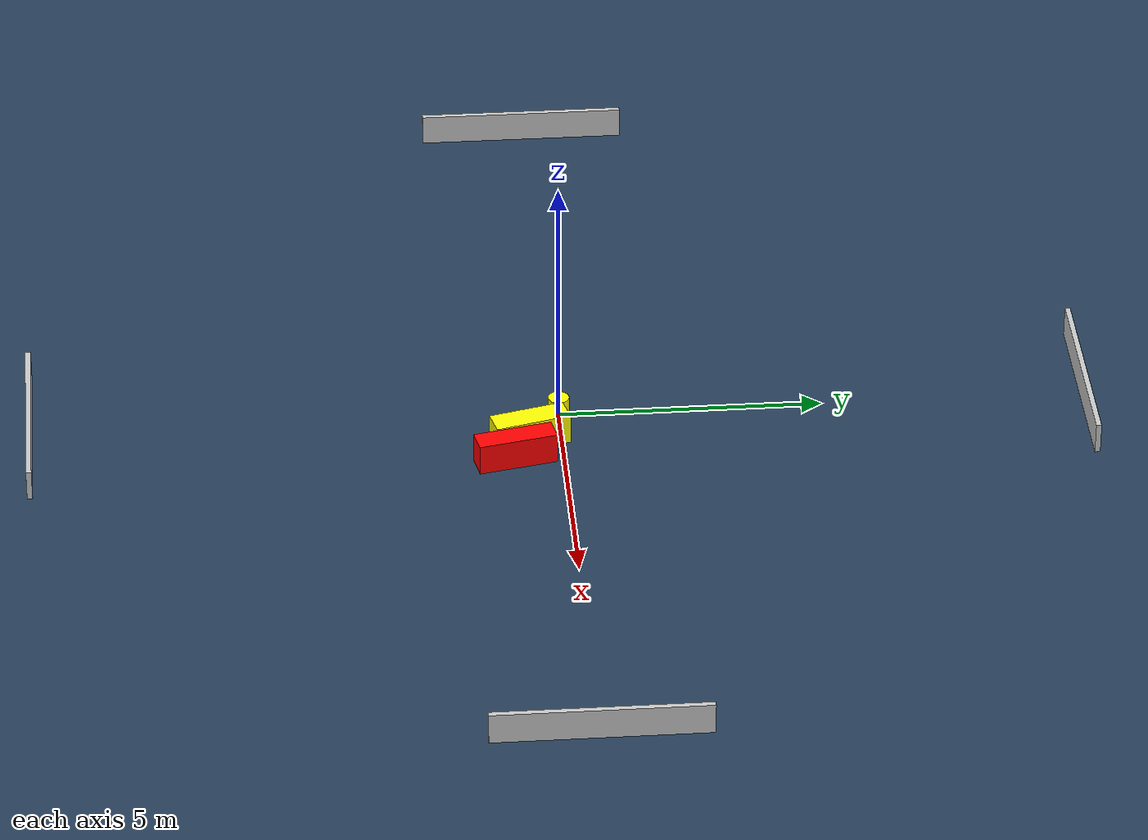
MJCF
<?xml version="1.0" ?>
<mujoco model="generated_environment">
  <option timestep="0.01" integrator="RK4" cone="elliptic"/>
  <default>
    <geom density="1"/>
  </default>
  <asset>
    <texture builtin="gradient" height="3072" name="skybox" rgb1="0.3 0.5 0.7" rgb2="0 0 0" type="skybox" width="512"/>
    <texture builtin="checker" height="300" name="groundplane" rgb1="0.2 0.3 0.4" rgb2="0.1 0.2 0.3" type="2d" width="300"/>
    <material name="groundplane" reflectance="0.2" texrepeat="5 5" texture="groundplane"/>
  </asset>
  <worldbody>
    <light dir="0 0 -1" directional="true" pos="0 0 1.5"/>
    <geom condim="3" friction="0.5 0.005 0.001" material="groundplane" name="floor" pos="0 0 0" size="0 0 0.05" type="plane"/>
    <body name="walls">
      <geom name="wall_1" condim="4" pos="-10.0 0.0 0.3" rgba="0.800000011920929 0.800000011920929 0.800000011920929 1.0" size="0.05 2.0 0.3" type="box"/>
      <geom name="wall_2" condim="4" pos="10.0 0.0 0.3" rgba="0.800000011920929 0.800000011920929 0.800000011920929 1.0" size="0.05 2.0 0.3" type="box"/>
      <geom name="wall_3" condim="4" pos="0.0 -10.0 0.3" rgba="0.800000011920929 0.800000011920929 0.800000011920929 1.0" size="2.0 0.05 0.3" type="box"/>
      <geom name="wall_4" condim="4" pos="0.0 10.0 0.3" rgba="0.800000011920929 0.800000011920929 0.800000011920929 1.0" size="2.0 0.05 0.3" type="box"/>
    </body>
    <body name="robot">
      <joint name="joint_x" type="slide" pos="0 0 0" axis="1 0 0"/>
      <joint name="joint_y" type="slide" pos="0 0 0" axis="0 1 0"/>
      <geom name="robot" type="cylinder" pos="0.0 0.0 0.2" size="0.2 0.2 0.0" mass="5.0" friction="1.0 0.005 0.0001" condim="4" rgba="1.0 1.0 0.0 1.0"/>
    </body>
    <body name="obstacle_1_movable">
      <geom name="obstacle_1_movable" condim="4" pos="0.8666238694847898 -0.604855106769219 0.3" euler="0 0 14.241104921850978" friction="0.0 0.005 0.001" rgba="1.0 1.0 0.0 1.0" size="0.24014560657884731 0.7250677026374686 0.3" type="box" mass="0.1"/>
      <joint type="free"/>
    </body>
    <body name="obstacle_2_static">
      <geom name="obstacle_2_static" condim="4" pos="1.4697953625912776 -0.9171661972440545 0.3" euler="0 0 101.59535464200059" friction="0.0 0.005 0.001" rgba="1.0 0.0 0.0 1.0" size="0.7535944219700239 0.2250156204552185 0.3" type="box"/>
    </body>
  </worldbody>
  <actuator>
    <motor name="actuator_x" joint="joint_x" gear="1" ctrlrange="-1 1"/>
    <motor name="actuator_y" joint="joint_y" gear="1" ctrlrange="-1 1"/>
  </actuator>
</mujoco>
